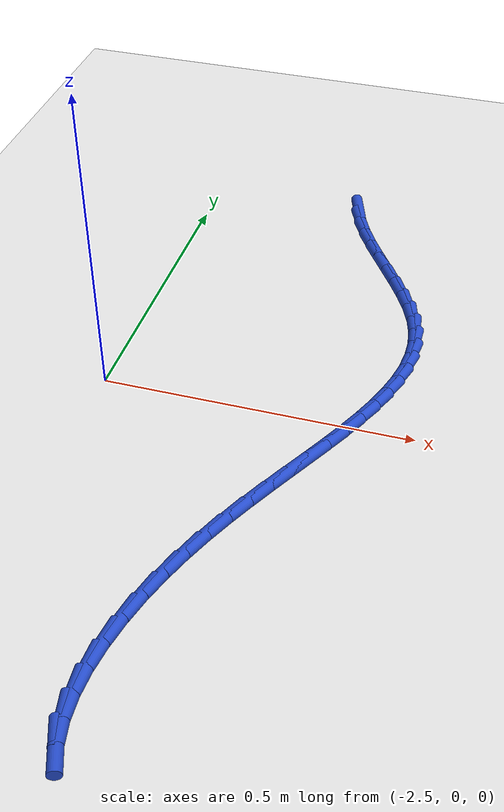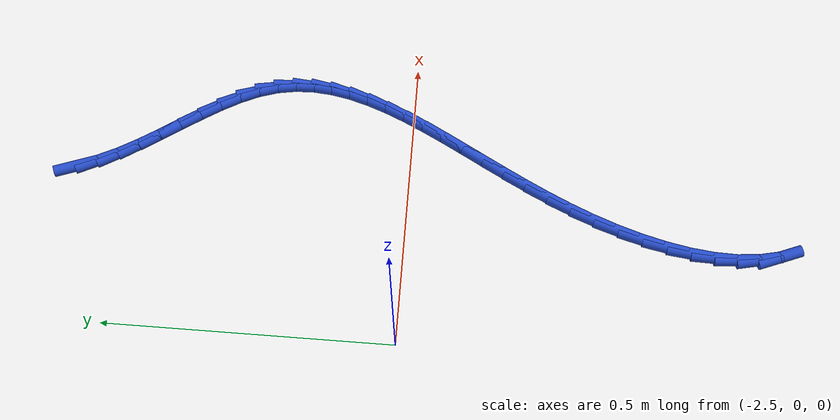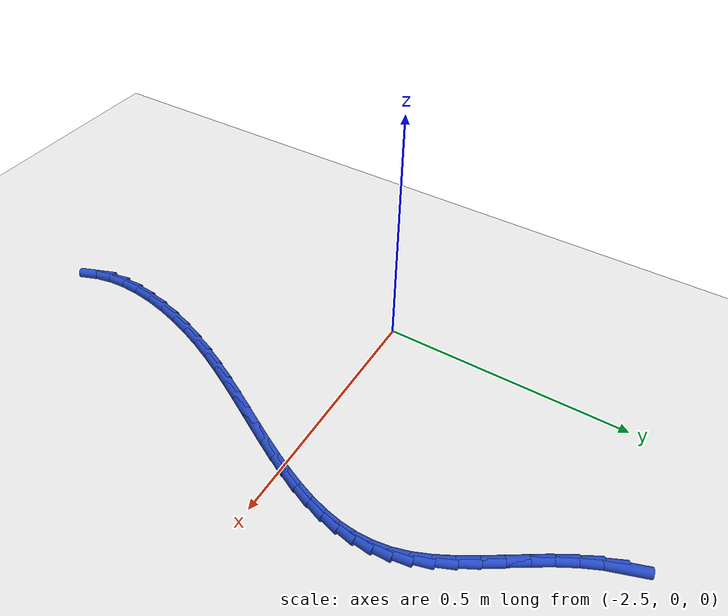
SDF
<sdf version="1.6">
 <world name="default">
  <model name="ground_plane">
   <static>1</static>
   <link name="link">
    <collision name="collision">
     <geometry><plane><normal>0 0 1</normal><size>100 100</size></plane></geometry>
     <surface><friction><ode><mu>100</mu><mu2>50</mu2></ode></friction></surface>
    </collision>
    <visual name="visual">
     <cast_shadows>0</cast_shadows>
     <geometry><plane><normal>0 0 1</normal><size>100 100</size></plane></geometry>
     <material>
      <script><uri>file://media/materials/scripts/gazebo.material</uri><name>Gazebo/WhiteGlow</name></script>
     </material>
    </visual>
   </link>
  </model>
  <model name="line">
   <link name="link_85">
    <pose>-2.2257355646722083 0.578475493317476 0.01 0 1.57 -1.2307917915154578</pose>
    <collision name="collision">
     <geometry><cylinder><radius>0.01</radius><length>0.08</length></cylinder></geometry>
    </collision>
    <visual name="visual">
     <material>
      <script><name>Gazebo/Blue</name><uri>file://media/materials/scripts/gazebo.material</uri></script>
     </material>
     <geometry><cylinder><radius>0.01</radius><length>0.08</length></cylinder></geometry>
    </visual>
   </link>
   <link name="link_86">
    <pose>-2.2135472588996774 0.544020137625465 0.01 0 1.57 -1.1279911299797338</pose>
    <collision name="collision">
     <geometry><cylinder><radius>0.01</radius><length>0.08</length></cylinder></geometry>
    </collision>
    <visual name="visual">
     <material>
      <script><name>Gazebo/Blue</name><uri>file://media/materials/scripts/gazebo.material</uri></script>
     </material>
     <geometry><cylinder><radius>0.01</radius><length>0.08</length></cylinder></geometry>
    </visual>
   </link>
   <link name="link_87">
    <pose>-2.1973725072793218 0.5099114438950304 0.01 0 1.57 -1.056407291305251</pose>
    <collision name="collision">
     <geometry><cylinder><radius>0.01</radius><length>0.08</length></cylinder></geometry>
    </collision>
    <visual name="visual">
     <material>
      <script><name>Gazebo/Blue</name><uri>file://media/materials/scripts/gazebo.material</uri></script>
     </material>
     <geometry><cylinder><radius>0.01</radius><length>0.08</length></cylinder></geometry>
    </visual>
   </link>
   <link name="link_88">
    <pose>-2.1782745400007464 0.4761178196848809 0.01 0 1.57 -1.011894262414228</pose>
    <collision name="collision">
     <geometry><cylinder><radius>0.01</radius><length>0.08</length></cylinder></geometry>
    </collision>
    <visual name="visual">
     <material>
      <script><name>Gazebo/Blue</name><uri>file://media/materials/scripts/gazebo.material</uri></script>
     </material>
     <geometry><cylinder><radius>0.01</radius><length>0.08</length></cylinder></geometry>
    </visual>
   </link>
   <link name="link_89">
    <pose>-2.157316587253558 0.44260767255372685 0.01 0 1.57 -0.9915341774261802</pose>
    <collision name="collision">
     <geometry><cylinder><radius>0.01</radius><length>0.08</length></cylinder></geometry>
    </collision>
    <visual name="visual">
     <material>
      <script><name>Gazebo/Blue</name><uri>file://media/materials/scripts/gazebo.material</uri></script>
     </material>
     <geometry><cylinder><radius>0.01</radius><length>0.08</length></cylinder></geometry>
    </visual>
   </link>
   <link name="link_90">
    <pose>-2.1355618792273607 0.40934941006027703 0.01 0 1.57 -0.9941327894424047</pose>
    <collision name="collision">
     <geometry><cylinder><radius>0.01</radius><length>0.08</length></cylinder></geometry>
    </collision>
    <visual name="visual">
     <material>
      <script><name>Gazebo/Blue</name><uri>file://media/materials/scripts/gazebo.material</uri></script>
     </material>
     <geometry><cylinder><radius>0.01</radius><length>0.08</length></cylinder></geometry>
    </visual>
   </link>
   <link name="link_91">
    <pose>-2.1140736461117595 0.3763114397632406 0.01 0 1.57 -1.0203877982182519</pose>
    <collision name="collision">
     <geometry><cylinder><radius>0.01</radius><length>0.08</length></cylinder></geometry>
    </collision>
    <visual name="visual">
     <material>
      <script><name>Gazebo/Blue</name><uri>file://media/materials/scripts/gazebo.material</uri></script>
     </material>
     <geometry><cylinder><radius>0.01</radius><length>0.08</length></cylinder></geometry>
    </visual>
   </link>
   <link name="link_92">
    <pose>-2.093915118096361 0.34346216922132683 0.01 0 1.57 -1.07301856103933</pose>
    <collision name="collision">
     <geometry><cylinder><radius>0.01</radius><length>0.08</length></cylinder></geometry>
    </collision>
    <visual name="visual">
     <material>
      <script><name>Gazebo/Blue</name><uri>file://media/materials/scripts/gazebo.material</uri></script>
     </material>
     <geometry><cylinder><radius>0.01</radius><length>0.08</length></cylinder></geometry>
    </visual>
   </link>
   <link name="link_93">
    <pose>-2.0761495253707687 0.3107700059932454 0.01 0 1.57 -1.1568014593323752</pose>
    <collision name="collision">
     <geometry><cylinder><radius>0.01</radius><length>0.08</length></cylinder></geometry>
    </collision>
    <visual name="visual">
     <material>
      <script><name>Gazebo/Blue</name><uri>file://media/materials/scripts/gazebo.material</uri></script>
     </material>
     <geometry><cylinder><radius>0.01</radius><length>0.08</length></cylinder></geometry>
    </visual>
   </link>
   <link name="link_94">
    <pose>-2.061840098124589 0.2782033576377054 0.01 0 1.57 -1.2760073280025641</pose>
    <collision name="collision">
     <geometry><cylinder><radius>0.01</radius><length>0.08</length></cylinder></geometry>
    </collision>
    <visual name="visual">
     <material>
      <script><name>Gazebo/Blue</name><uri>file://media/materials/scripts/gazebo.material</uri></script>
     </material>
     <geometry><cylinder><radius>0.01</radius><length>0.08</length></cylinder></geometry>
    </visual>
   </link>
   <link name="link_95">
    <pose>-2.0519795932142766 0.24572857530962286 0.01 0 1.57 -1.4103330759738664</pose>
    <collision name="collision">
     <geometry><cylinder><radius>0.01</radius><length>0.08</length></cylinder></geometry>
    </collision>
    <visual name="visual">
     <material>
      <script><name>Gazebo/Blue</name><uri>file://media/materials/scripts/gazebo.material</uri></script>
     </material>
     <geometry><cylinder><radius>0.01</radius><length>0.08</length></cylinder></geometry>
    </visual>
   </link>
   <link name="link_96">
    <pose>-2.0467288872748144 0.21328773599429293 0.01 0 1.57 -1.5393176830200446</pose>
    <collision name="collision">
     <geometry><cylinder><radius>0.01</radius><length>0.08</length></cylinder></geometry>
    </collision>
    <visual name="visual">
     <material>
      <script><name>Gazebo/Blue</name><uri>file://media/materials/scripts/gazebo.material</uri></script>
     </material>
     <geometry><cylinder><radius>0.01</radius><length>0.08</length></cylinder></geometry>
    </visual>
   </link>
   <link name="link_97">
    <pose>-2.045706102398932 0.18080707916160588 0.01 0 1.57 1.4846782427210814</pose>
    <collision name="collision">
     <geometry><cylinder><radius>0.01</radius><length>0.08</length></cylinder></geometry>
    </collision>
    <visual name="visual">
     <material>
      <script><name>Gazebo/Blue</name><uri>file://media/materials/scripts/gazebo.material</uri></script>
     </material>
     <geometry><cylinder><radius>0.01</radius><length>0.08</length></cylinder></geometry>
    </visual>
   </link>
   <link name="link_98">
    <pose>-2.0485200386806373 0.14821257226659668 0.01 0 1.57 1.3821276393255837</pose>
    <collision name="collision">
     <geometry><cylinder><radius>0.01</radius><length>0.08</length></cylinder></geometry>
    </collision>
    <visual name="visual">
     <material>
      <script><name>Gazebo/Blue</name><uri>file://media/materials/scripts/gazebo.material</uri></script>
     </material>
     <geometry><cylinder><radius>0.01</radius><length>0.08</length></cylinder></geometry>
    </visual>
   </link>
   <link name="link_99">
    <pose>-2.0547794962139396 0.11543018276430123 0.01 0 1.57 1.2960661709185057</pose>
    <collision name="collision">
     <geometry><cylinder><radius>0.01</radius><length>0.08</length></cylinder></geometry>
    </collision>
    <visual name="visual">
     <material>
      <script><name>Gazebo/Blue</name><uri>file://media/materials/scripts/gazebo.material</uri></script>
     </material>
     <geometry><cylinder><radius>0.01</radius><length>0.08</length></cylinder></geometry>
    </visual>
   </link>
   <link name="link_100">
    <pose>-2.0640932750928456 0.08238587810975441 0.01 0 1.57 1.226301729459426</pose>
    <collision name="collision">
     <geometry><cylinder><radius>0.01</radius><length>0.08</length></cylinder></geometry>
    </collision>
    <visual name="visual">
     <material>
      <script><name>Gazebo/Blue</name><uri>file://media/materials/scripts/gazebo.material</uri></script>
     </material>
     <geometry><cylinder><radius>0.01</radius><length>0.08</length></cylinder></geometry>
    </visual>
   </link>
   <link name="link_101">
    <pose>-2.0760701754113655 0.04900562575799102 0.01 0 1.57 1.171737172504408</pose>
    <collision name="collision">
     <geometry><cylinder><radius>0.01</radius><length>0.08</length></cylinder></geometry>
    </collision>
    <visual name="visual">
     <material>
      <script><name>Gazebo/Blue</name><uri>file://media/materials/scripts/gazebo.material</uri></script>
     </material>
     <geometry><cylinder><radius>0.01</radius><length>0.08</length></cylinder></geometry>
    </visual>
   </link>
   <link name="link_102">
    <pose>-2.090318997263507 0.015215393164047176 0.01 0 1.57 1.1309421153089592</pose>
    <collision name="collision">
     <geometry><cylinder><radius>0.01</radius><length>0.08</length></cylinder></geometry>
    </collision>
    <visual name="visual">
     <material>
      <script><name>Gazebo/Blue</name><uri>file://media/materials/scripts/gazebo.material</uri></script>
     </material>
     <geometry><cylinder><radius>0.01</radius><length>0.08</length></cylinder></geometry>
    </visual>
   </link>
   <link name="link_103">
    <pose>-2.1064485407432763 -0.019058852217042406 0.01 0 1.57 1.1024990866126965</pose>
    <collision name="collision">
     <geometry><cylinder><radius>0.01</radius><length>0.08</length></cylinder></geometry>
    </collision>
    <visual name="visual">
     <material>
      <script><name>Gazebo/Blue</name><uri>file://media/materials/scripts/gazebo.material</uri></script>
     </material>
     <geometry><cylinder><radius>0.01</radius><length>0.08</length></cylinder></geometry>
    </visual>
   </link>
   <link name="link_104">
    <pose>-2.1240676059446844 -0.053891142930242386 0.01 0 1.57 1.0851724389049993</pose>
    <collision name="collision">
     <geometry><cylinder><radius>0.01</radius><length>0.08</length></cylinder></geometry>
    </collision>
    <visual name="visual">
     <material>
      <script><name>Gazebo/Blue</name><uri>file://media/materials/scripts/gazebo.material</uri></script>
     </material>
     <geometry><cylinder><radius>0.01</radius><length>0.08</length></cylinder></geometry>
    </visual>
   </link>
   <link name="link_105">
    <pose>-2.1427849929617375 -0.08935551152051763 0.01 0 1.57 1.0779680399463627</pose>
    <collision name="collision">
     <geometry><cylinder><radius>0.01</radius><length>0.08</length></cylinder></geometry>
    </collision>
    <visual name="visual">
     <material>
      <script><name>Gazebo/Blue</name><uri>file://media/materials/scripts/gazebo.material</uri></script>
     </material>
     <geometry><cylinder><radius>0.01</radius><length>0.08</length></cylinder></geometry>
    </visual>
   </link>
   <link name="link_106">
    <pose>-2.162209501888446 -0.12552599053283364 0.01 0 1.57 1.080134844172584</pose>
    <collision name="collision">
     <geometry><cylinder><radius>0.01</radius><length>0.08</length></cylinder></geometry>
    </collision>
    <visual name="visual">
     <material>
      <script><name>Gazebo/Blue</name><uri>file://media/materials/scripts/gazebo.material</uri></script>
     </material>
     <geometry><cylinder><radius>0.01</radius><length>0.08</length></cylinder></geometry>
    </visual>
   </link>
   <link name="link_107">
    <pose>-2.1819499328188168 -0.16247661251215356 0.01 0 1.57 1.0911384081383781</pose>
    <collision name="collision">
     <geometry><cylinder><radius>0.01</radius><length>0.08</length></cylinder></geometry>
    </collision>
    <visual name="visual">
     <material>
      <script><name>Gazebo/Blue</name><uri>file://media/materials/scripts/gazebo.material</uri></script>
     </material>
     <geometry><cylinder><radius>0.01</radius><length>0.08</length></cylinder></geometry>
    </visual>
   </link>
   <link name="link_108">
    <pose>-2.2016150858468575 -0.200281410003443 0.01 0 1.57 1.1106210692033935</pose>
    <collision name="collision">
     <geometry><cylinder><radius>0.01</radius><length>0.08</length></cylinder></geometry>
    </collision>
    <visual name="visual">
     <material>
      <script><name>Gazebo/Blue</name><uri>file://media/materials/scripts/gazebo.material</uri></script>
     </material>
     <geometry><cylinder><radius>0.01</radius><length>0.08</length></cylinder></geometry>
    </visual>
   </link>
   <link name="link_109">
    <pose>-2.2208137610665775 -0.23901441555166675 0.01 0 1.57 1.1383542541831548</pose>
    <collision name="collision">
     <geometry><cylinder><radius>0.01</radius><length>0.08</length></cylinder></geometry>
    </collision>
    <visual name="visual">
     <material>
      <script><name>Gazebo/Blue</name><uri>file://media/materials/scripts/gazebo.material</uri></script>
     </material>
     <geometry><cylinder><radius>0.01</radius><length>0.08</length></cylinder></geometry>
    </visual>
   </link>
   <link name="link_110">
    <pose>-2.239154758571985 -0.27874966170178955 0.01 0 1.57 1.174183504892831</pose>
    <collision name="collision">
     <geometry><cylinder><radius>0.01</radius><length>0.08</length></cylinder></geometry>
    </collision>
    <visual name="visual">
     <material>
      <script><name>Gazebo/Blue</name><uri>file://media/materials/scripts/gazebo.material</uri></script>
     </material>
     <geometry><cylinder><radius>0.01</radius><length>0.08</length></cylinder></geometry>
    </visual>
   </link>
   <link name="link_111">
    <pose>-2.2562468784570875 -0.31956118099877606 0.01 0 1.57 1.2174729646055764</pose>
    <collision name="collision">
     <geometry><cylinder><radius>0.01</radius><length>0.08</length></cylinder></geometry>
    </collision>
    <visual name="visual">
     <material>
      <script><name>Gazebo/Blue</name><uri>file://media/materials/scripts/gazebo.material</uri></script>
     </material>
     <geometry><cylinder><radius>0.01</radius><length>0.08</length></cylinder></geometry>
    </visual>
   </link>
   <link name="link_112">
    <pose>-2.2716972211352564 -0.3614548178936931 0.01 0 1.57 1.265692734970459</pose>
    <collision name="collision">
     <geometry><cylinder><radius>0.01</radius><length>0.08</length></cylinder></geometry>
    </collision>
    <visual name="visual">
     <material>
      <script><name>Gazebo/Blue</name><uri>file://media/materials/scripts/gazebo.material</uri></script>
     </material>
     <geometry><cylinder><radius>0.01</radius><length>0.08</length></cylinder></geometry>
    </visual>
   </link>
   <link name="link_113">
    <pose>-2.2851025013841704 -0.4040197640346707 0.01 0 1.57 1.3195194714801677</pose>
    <collision name="collision">
     <geometry><cylinder><radius>0.01</radius><length>0.08</length></cylinder></geometry>
    </collision>
    <visual name="visual">
     <material>
      <script><name>Gazebo/Blue</name><uri>file://media/materials/scripts/gazebo.material</uri></script>
     </material>
     <geometry><cylinder><radius>0.01</radius><length>0.08</length></cylinder></geometry>
    </visual>
   </link>
   <link name="link_114">
    <pose>-2.2960555123019533 -0.4466878804232548 0.01 0 1.57 1.3813200767764884</pose>
    <collision name="collision">
     <geometry><cylinder><radius>0.01</radius><length>0.08</length></cylinder></geometry>
    </collision>
    <visual name="visual">
     <material>
      <script><name>Gazebo/Blue</name><uri>file://media/materials/scripts/gazebo.material</uri></script>
     </material>
     <geometry><cylinder><radius>0.01</radius><length>0.08</length></cylinder></geometry>
    </visual>
   </link>
   <link name="link_115">
    <pose>-2.304149039716223 -0.48889073638153285 0.01 0 1.57 1.4540853446155877</pose>
    <collision name="collision">
     <geometry><cylinder><radius>0.01</radius><length>0.08</length></cylinder></geometry>
    </collision>
    <visual name="visual">
     <material>
      <script><name>Gazebo/Blue</name><uri>file://media/materials/scripts/gazebo.material</uri></script>
     </material>
     <geometry><cylinder><radius>0.01</radius><length>0.08</length></cylinder></geometry>
    </visual>
   </link>
   <link name="link_116">
    <pose>-2.3089758694546005 -0.5300599012315927 0.01 0 1.57 1.5416662307662068</pose>
    <collision name="collision">
     <geometry><cylinder><radius>0.01</radius><length>0.08</length></cylinder></geometry>
    </collision>
    <visual name="visual">
     <material>
      <script><name>Gazebo/Blue</name><uri>file://media/materials/scripts/gazebo.material</uri></script>
     </material>
     <geometry><cylinder><radius>0.01</radius><length>0.08</length></cylinder></geometry>
    </visual>
   </link>
   <link name="link_117">
    <pose>-2.3101287873447007 -0.5696269442955212 0.01 0 1.57 -1.4926540847968173</pose>
    <collision name="collision">
     <geometry><cylinder><radius>0.01</radius><length>0.08</length></cylinder></geometry>
    </collision>
    <visual name="visual">
     <material>
      <script><name>Gazebo/Blue</name><uri>file://media/materials/scripts/gazebo.material</uri></script>
     </material>
     <geometry><cylinder><radius>0.01</radius><length>0.08</length></cylinder></geometry>
    </visual>
   </link>
   <link name="link_118">
    <pose>-2.307200579214144 -0.607023434895406 0.01 0 1.57 -1.3599805470683355</pose>
    <collision name="collision">
     <geometry><cylinder><radius>0.01</radius><length>0.08</length></cylinder></geometry>
    </collision>
    <visual name="visual">
     <material>
      <script><name>Gazebo/Blue</name><uri>file://media/materials/scripts/gazebo.material</uri></script>
     </material>
     <geometry><cylinder><radius>0.01</radius><length>0.08</length></cylinder></geometry>
    </visual>
   </link>
   <link name="link_119">
    <pose>-2.2997840308905495 -0.6416809423533354 0.01 0 1.57 -1.1965734004522208</pose>
    <collision name="collision">
     <geometry><cylinder><radius>0.01</radius><length>0.08</length></cylinder></geometry>
    </collision>
    <visual name="visual">
     <material>
      <script><name>Gazebo/Blue</name><uri>file://media/materials/scripts/gazebo.material</uri></script>
     </material>
     <geometry><cylinder><radius>0.01</radius><length>0.08</length></cylinder></geometry>
    </visual>
   </link>
  </model>
 </world>
</sdf>
